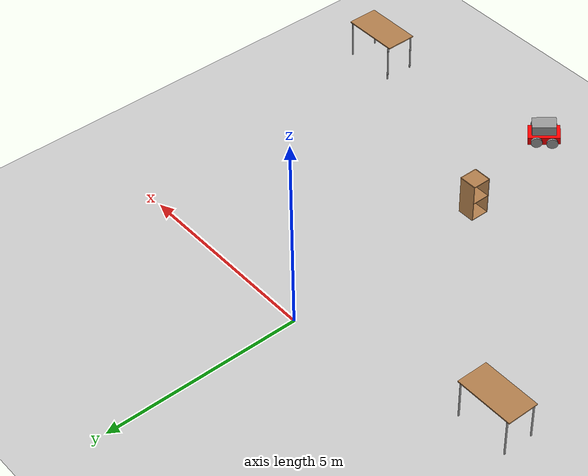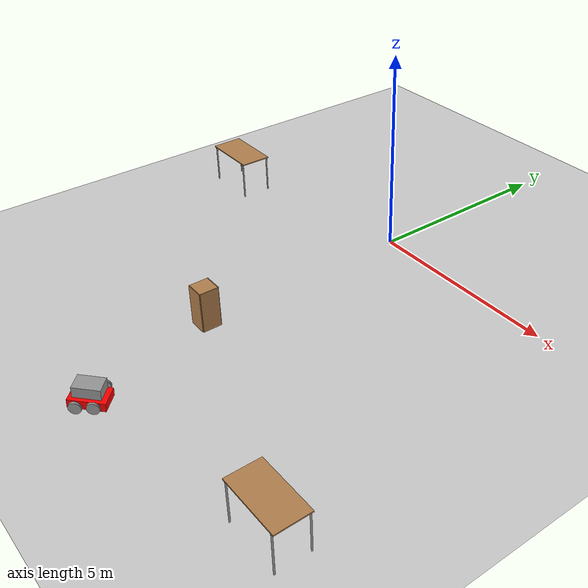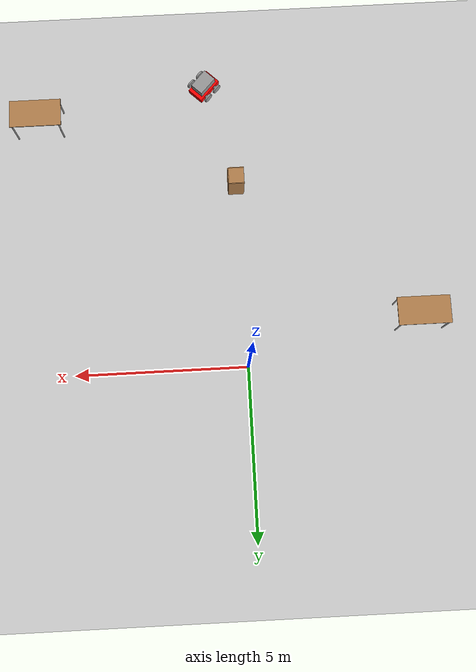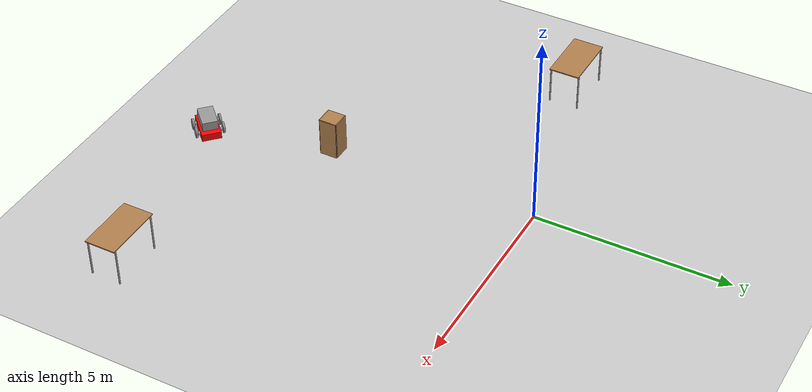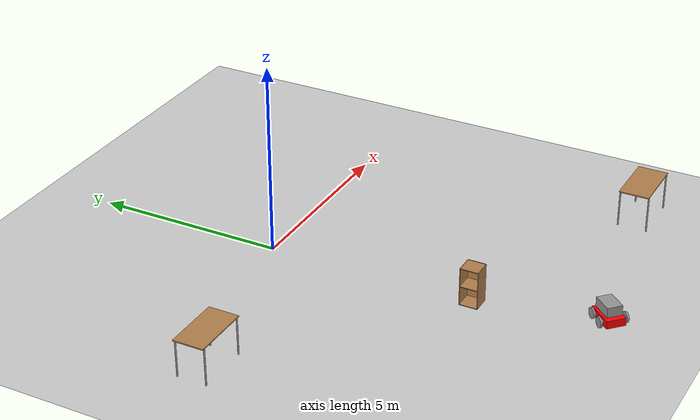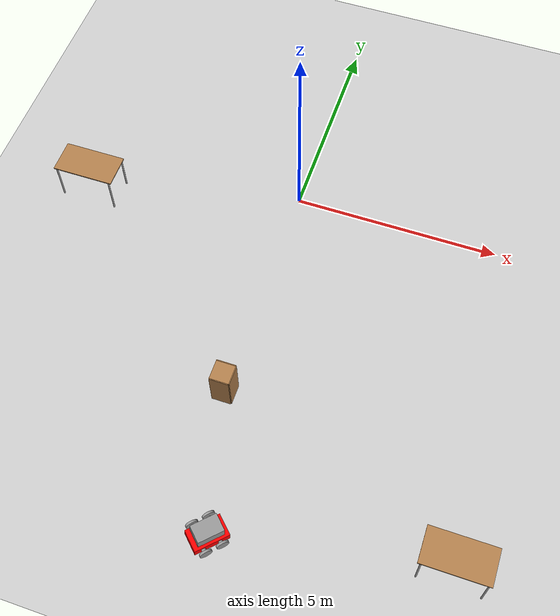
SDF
<sdf version="1.6">
 <world name="default">
  <model name="ground_plane">
   <static>1</static>
   <link name="link">
    <collision name="collision">
     <geometry><plane><normal>0 0 1</normal><size>100 100</size></plane></geometry>
     <surface><friction><ode><mu>100</mu><mu2>50</mu2></ode></friction></surface>
    </collision>
    <visual name="visual">
     <cast_shadows>0</cast_shadows>
     <geometry><plane><normal>0 0 1</normal><size>100 100</size></plane></geometry>
     <material>
      <script><uri>file://media/materials/scripts/gazebo.material</uri><name>Gazebo/Grey</name></script>
     </material>
    </visual>
   </link>
  </model>
  <model name="minikart_1">
   <link name="link_0">
    <inertial>
     <mass>1</mass>
     <inertia>
      <ixx>0.166667</ixx>
      <ixy>0</ixy>
      <ixz>0</ixz>
      <iyy>0.166667</iyy>
      <iyz>0</iyz>
      <izz>0.166667</izz>
     </inertia>
    </inertial>
    <pose>-0.020217 -0.007477 -0.044375 0 -0 0</pose>
    <visual name="visual">
     <geometry><box><size>0.8 0.5 0.2</size></box></geometry>
     <material>
      <lighting>1</lighting>
      <script><uri>file://media/materials/scripts/gazebo.material</uri><name>Gazebo/Grey</name></script>
      <shader type="pixel"><normal_map>__default__</normal_map></shader>
      <ambient>1 0 0 1</ambient>
      <diffuse>1 0 0 1</diffuse>
      <specular>0.5 0.01 0.01 1</specular>
      <emissive>0 0 0 1</emissive>
     </material>
    </visual>
    <collision name="collision">
     <geometry><box><size>0.8 0.5 0.2</size></box></geometry>
     <surface>
      <friction>
       <ode><mu>1</mu><mu2>1</mu2><fdir1>0 0 0</fdir1><slip1>0</slip1><slip2>0</slip2></ode>
       <torsional>
        <coefficient>1</coefficient>
        <patch_radius>0</patch_radius>
        <surface_radius>0</surface_radius>
        <use_patch_radius>1</use_patch_radius>
        <ode><slip>0</slip></ode>
       </torsional>
      </friction>
      <bounce><restitution_coefficient>0</restitution_coefficient><threshold>1e+06</threshold></bounce>
      <contact>
       <collide_without_contact>0</collide_without_contact>
       <collide_without_contact_bitmask>1</collide_without_contact_bitmask>
       <collide_bitmask>1</collide_bitmask>
       <ode>
        <soft_cfm>0</soft_cfm>
        <soft_erp>0.2</soft_erp>
        <kp>1e+13</kp>
        <kd>1</kd>
        <max_vel>0.01</max_vel>
        <min_depth>0</min_depth>
       </ode>
       <bullet>
        <split_impulse>1</split_impulse>
        <split_impulse_penetration_threshold>-0.01</split_impulse_penetration_threshold>
        <soft_cfm>0</soft_cfm>
        <soft_erp>0.2</soft_erp>
        <kp>1e+13</kp>
        <kd>1</kd>
       </bullet>
      </contact>
     </surface>
    </collision>
   </link>
   <link name="link_1">
    <inertial>
     <mass>1</mass>
     <inertia><ixx>0.145833</ixx><ixy>0</ixy><ixz>0</ixz><iyy>0.145833</iyy><iyz>0</iyz><izz>0.125</izz></inertia>
    </inertial>
    <pose>-0.198848 -0.00709 -0.044375 0 -0 0</pose>
    <visual name="visual">
     <pose>0 0 0 1.5708 -0 0</pose>
     <geometry><cylinder><radius>0.05</radius><length>0.7</length></cylinder></geometry>
     <material>
      <lighting>1</lighting>
      <script><uri>file://media/materials/scripts/gazebo.material</uri><name>Gazebo/Grey</name></script>
      <shader type="pixel"><normal_map>__default__</normal_map></shader>
      <ambient>0 0 0 1</ambient>
      <diffuse>0 0 0 1</diffuse>
      <specular>0 0 0 1</specular>
      <emissive>0 0 0 1</emissive>
     </material>
    </visual>
    <collision name="collision">
     <pose>0 0 0 1.5708 -0 0</pose>
     <geometry><cylinder><radius>0.05</radius><length>0.7</length></cylinder></geometry>
     <surface>
      <friction>
       <ode><mu>1</mu><mu2>1</mu2><fdir1>0 0 0</fdir1><slip1>0</slip1><slip2>0</slip2></ode>
       <torsional>
        <coefficient>1</coefficient>
        <patch_radius>0</patch_radius>
        <surface_radius>0</surface_radius>
        <use_patch_radius>1</use_patch_radius>
        <ode><slip>0</slip></ode>
       </torsional>
      </friction>
      <bounce><restitution_coefficient>0</restitution_coefficient><threshold>1e+06</threshold></bounce>
      <contact>
       <collide_without_contact>0</collide_without_contact>
       <collide_without_contact_bitmask>1</collide_without_contact_bitmask>
       <collide_bitmask>1</collide_bitmask>
       <ode>
        <soft_cfm>0</soft_cfm>
        <soft_erp>0.2</soft_erp>
        <kp>1e+13</kp>
        <kd>1</kd>
        <max_vel>0.01</max_vel>
        <min_depth>0</min_depth>
       </ode>
       <bullet>
        <split_impulse>1</split_impulse>
        <split_impulse_penetration_threshold>-0.01</split_impulse_penetration_threshold>
        <soft_cfm>0</soft_cfm>
        <soft_erp>0.2</soft_erp>
        <kp>1e+13</kp>
        <kd>1</kd>
       </bullet>
      </contact>
     </surface>
    </collision>
   </link>
   <link name="link_1_clone">
    <inertial>
     <mass>1</mass>
     <inertia><ixx>0.145833</ixx><ixy>0</ixy><ixz>0</ixz><iyy>0.145833</iyy><iyz>0</iyz><izz>0.125</izz></inertia>
    </inertial>
    <pose>0.182326 -0.007416 -0.044375 0 -0 0</pose>
    <visual name="visual">
     <pose>0 0 0 1.5708 -0 0</pose>
     <geometry><cylinder><radius>0.05</radius><length>0.7</length></cylinder></geometry>
     <material>
      <lighting>1</lighting>
      <script><uri>file://media/materials/scripts/gazebo.material</uri><name>Gazebo/Grey</name></script>
      <shader type="pixel"><normal_map>__default__</normal_map></shader>
      <ambient>0 0 0 1</ambient>
      <diffuse>0 0 0 1</diffuse>
      <specular>0 0 0 1</specular>
      <emissive>0 0 0 1</emissive>
     </material>
    </visual>
    <collision name="collision">
     <pose>0 0 0 1.5708 -0 0</pose>
     <geometry><cylinder><radius>0.05</radius><length>0.7</length></cylinder></geometry>
     <surface>
      <friction>
       <ode><mu>1</mu><mu2>1</mu2><fdir1>0 0 0</fdir1><slip1>0</slip1><slip2>0</slip2></ode>
       <torsional>
        <coefficient>1</coefficient>
        <patch_radius>0</patch_radius>
        <surface_radius>0</surface_radius>
        <use_patch_radius>1</use_patch_radius>
        <ode><slip>0</slip></ode>
       </torsional>
      </friction>
      <bounce><restitution_coefficient>0</restitution_coefficient><threshold>1e+06</threshold></bounce>
      <contact>
       <collide_without_contact>0</collide_without_contact>
       <collide_without_contact_bitmask>1</collide_without_contact_bitmask>
       <collide_bitmask>1</collide_bitmask>
       <ode>
        <soft_cfm>0</soft_cfm>
        <soft_erp>0.2</soft_erp>
        <kp>1e+13</kp>
        <kd>1</kd>
        <max_vel>0.01</max_vel>
        <min_depth>0</min_depth>
       </ode>
       <bullet>
        <split_impulse>1</split_impulse>
        <split_impulse_penetration_threshold>-0.01</split_impulse_penetration_threshold>
        <soft_cfm>0</soft_cfm>
        <soft_erp>0.2</soft_erp>
        <kp>1e+13</kp>
        <kd>1</kd>
       </bullet>
      </contact>
     </surface>
    </collision>
   </link>
   <link name="link_2">
    <inertial>
     <mass>1</mass>
     <inertia><ixx>0.145833</ixx><ixy>0</ixy><ixz>0</ixz><iyy>0.145833</iyy><iyz>0</iyz><izz>0.125</izz></inertia>
    </inertial>
    <pose>0.176149 -0.348651 -0.044375 0 -0 0</pose>
    <visual name="visual">
     <pose>0 0 0 1.5708 -0 0</pose>
     <geometry><cylinder><radius>0.14</radius><length>0.05</length></cylinder></geometry>
     <material>
      <lighting>1</lighting>
      <script><uri>file://media/materials/scripts/gazebo.material</uri><name>Gazebo/Grey</name></script>
      <shader type="pixel"><normal_map>__default__</normal_map></shader>
      <ambient>0 0 0 1</ambient>
      <diffuse>0 0 0 1</diffuse>
      <specular>0 0 0 1</specular>
      <emissive>0 0 0 1</emissive>
     </material>
    </visual>
    <collision name="collision">
     <pose>0 0 0 1.5708 -0 0</pose>
     <geometry><cylinder><radius>0.14</radius><length>0.05</length></cylinder></geometry>
     <surface>
      <friction>
       <ode><mu>1</mu><mu2>1</mu2><fdir1>0 0 0</fdir1><slip1>0</slip1><slip2>0</slip2></ode>
       <torsional>
        <coefficient>1</coefficient>
        <patch_radius>0</patch_radius>
        <surface_radius>0</surface_radius>
        <use_patch_radius>1</use_patch_radius>
        <ode><slip>0</slip></ode>
       </torsional>
      </friction>
      <bounce><restitution_coefficient>0</restitution_coefficient><threshold>1e+06</threshold></bounce>
      <contact>
       <collide_without_contact>0</collide_without_contact>
       <collide_without_contact_bitmask>1</collide_without_contact_bitmask>
       <collide_bitmask>1</collide_bitmask>
       <ode>
        <soft_cfm>0</soft_cfm>
        <soft_erp>0.2</soft_erp>
        <kp>1e+13</kp>
        <kd>1</kd>
        <max_vel>0.01</max_vel>
        <min_depth>0</min_depth>
       </ode>
       <bullet>
        <split_impulse>1</split_impulse>
        <split_impulse_penetration_threshold>-0.01</split_impulse_penetration_threshold>
        <soft_cfm>0</soft_cfm>
        <soft_erp>0.2</soft_erp>
        <kp>1e+13</kp>
        <kd>1</kd>
       </bullet>
      </contact>
     </surface>
    </collision>
   </link>
   <link name="link_2_clone">
    <inertial>
     <mass>1</mass>
     <inertia><ixx>0.145833</ixx><ixy>0</ixy><ixz>0</ixz><iyy>0.145833</iyy><iyz>0</iyz><izz>0.125</izz></inertia>
    </inertial>
    <pose>0.17409 0.334641 -0.044375 0 -0 0</pose>
    <visual name="visual">
     <pose>0 0 0 1.5708 -0 0</pose>
     <geometry><cylinder><radius>0.14</radius><length>0.05</length></cylinder></geometry>
     <material>
      <lighting>1</lighting>
      <script><uri>file://media/materials/scripts/gazebo.material</uri><name>Gazebo/Grey</name></script>
      <shader type="pixel"><normal_map>__default__</normal_map></shader>
      <ambient>0 0 0 1</ambient>
      <diffuse>0 0 0 1</diffuse>
      <specular>0 0 0 1</specular>
      <emissive>0 0 0 1</emissive>
     </material>
    </visual>
    <collision name="collision">
     <pose>0 0 0 1.5708 -0 0</pose>
     <geometry><cylinder><radius>0.14</radius><length>0.05</length></cylinder></geometry>
     <surface>
      <friction>
       <ode><mu>1</mu><mu2>1</mu2><fdir1>0 0 0</fdir1><slip1>0</slip1><slip2>0</slip2></ode>
       <torsional>
        <coefficient>1</coefficient>
        <patch_radius>0</patch_radius>
        <surface_radius>0</surface_radius>
        <use_patch_radius>1</use_patch_radius>
        <ode><slip>0</slip></ode>
       </torsional>
      </friction>
      <bounce><restitution_coefficient>0</restitution_coefficient><threshold>1e+06</threshold></bounce>
      <contact>
       <collide_without_contact>0</collide_without_contact>
       <collide_without_contact_bitmask>1</collide_without_contact_bitmask>
       <collide_bitmask>1</collide_bitmask>
       <ode>
        <soft_cfm>0</soft_cfm>
        <soft_erp>0.2</soft_erp>
        <kp>1e+13</kp>
        <kd>1</kd>
        <max_vel>0.01</max_vel>
        <min_depth>0</min_depth>
       </ode>
       <bullet>
        <split_impulse>1</split_impulse>
        <split_impulse_penetration_threshold>-0.01</split_impulse_penetration_threshold>
        <soft_cfm>0</soft_cfm>
        <soft_erp>0.2</soft_erp>
        <kp>1e+13</kp>
        <kd>1</kd>
       </bullet>
      </contact>
     </surface>
    </collision>
   </link>
   <link name="link_2_clone_0">
    <inertial>
     <mass>1</mass>
     <inertia><ixx>0.145833</ixx><ixy>0</ixy><ixz>0</ixz><iyy>0.145833</iyy><iyz>0</iyz><izz>0.125</izz></inertia>
    </inertial>
    <pose>-0.201075 0.337015 0.000625 0 -0 0</pose>
    <visual name="visual">
     <pose>0 0 0 1.5708 -0 0</pose>
     <geometry><cylinder><radius>0.14</radius><length>0.05</length></cylinder></geometry>
     <material>
      <lighting>1</lighting>
      <script><uri>file://media/materials/scripts/gazebo.material</uri><name>Gazebo/Grey</name></script>
      <shader type="pixel"><normal_map>__default__</normal_map></shader>
      <ambient>0 0 0 1</ambient>
      <diffuse>0 0 0 1</diffuse>
      <specular>0 0 0 1</specular>
      <emissive>0 0 0 1</emissive>
     </material>
    </visual>
    <collision name="collision">
     <pose>0 0 0 1.5708 -0 0</pose>
     <geometry><cylinder><radius>0.14</radius><length>0.05</length></cylinder></geometry>
     <surface>
      <friction>
       <ode><mu>1</mu><mu2>1</mu2><fdir1>0 0 0</fdir1><slip1>0</slip1><slip2>0</slip2></ode>
       <torsional>
        <coefficient>1</coefficient>
        <patch_radius>0</patch_radius>
        <surface_radius>0</surface_radius>
        <use_patch_radius>1</use_patch_radius>
        <ode><slip>0</slip></ode>
       </torsional>
      </friction>
      <bounce><restitution_coefficient>0</restitution_coefficient><threshold>1e+06</threshold></bounce>
      <contact>
       <collide_without_contact>0</collide_without_contact>
       <collide_without_contact_bitmask>1</collide_without_contact_bitmask>
       <collide_bitmask>1</collide_bitmask>
       <ode>
        <soft_cfm>0</soft_cfm>
        <soft_erp>0.2</soft_erp>
        <kp>1e+13</kp>
        <kd>1</kd>
        <max_vel>0.01</max_vel>
        <min_depth>0</min_depth>
       </ode>
       <bullet>
        <split_impulse>1</split_impulse>
        <split_impulse_penetration_threshold>-0.01</split_impulse_penetration_threshold>
        <soft_cfm>0</soft_cfm>
        <soft_erp>0.2</soft_erp>
        <kp>1e+13</kp>
        <kd>1</kd>
       </bullet>
      </contact>
     </surface>
    </collision>
   </link>
   <link name="link_2_clone_1">
    <inertial>
     <mass>1</mass>
     <inertia><ixx>0.145833</ixx><ixy>0</ixy><ixz>0</ixz><iyy>0.145833</iyy><iyz>0</iyz><izz>0.125</izz></inertia>
    </inertial>
    <pose>-0.20738 -0.355325 0.000625 0 -0 0</pose>
    <visual name="visual">
     <pose>0 0 0 1.5708 -0 0</pose>
     <geometry><cylinder><radius>0.14</radius><length>0.05</length></cylinder></geometry>
     <material>
      <lighting>1</lighting>
      <script><uri>file://media/materials/scripts/gazebo.material</uri><name>Gazebo/Grey</name></script>
      <shader type="pixel"><normal_map>__default__</normal_map></shader>
      <ambient>0 0 0 1</ambient>
      <diffuse>0 0 0 1</diffuse>
      <specular>0 0 0 1</specular>
      <emissive>0 0 0 1</emissive>
     </material>
    </visual>
    <collision name="collision">
     <pose>0 0 0 1.5708 -0 0</pose>
     <geometry><cylinder><radius>0.14</radius><length>0.05</length></cylinder></geometry>
     <surface>
      <friction>
       <ode><mu>1</mu><mu2>1</mu2><fdir1>0 0 0</fdir1><slip1>0</slip1><slip2>0</slip2></ode>
       <torsional>
        <coefficient>1</coefficient>
        <patch_radius>0</patch_radius>
        <surface_radius>0</surface_radius>
        <use_patch_radius>1</use_patch_radius>
        <ode><slip>0</slip></ode>
       </torsional>
      </friction>
      <bounce><restitution_coefficient>0</restitution_coefficient><threshold>1e+06</threshold></bounce>
      <contact>
       <collide_without_contact>0</collide_without_contact>
       <collide_without_contact_bitmask>1</collide_without_contact_bitmask>
       <collide_bitmask>1</collide_bitmask>
       <ode>
        <soft_cfm>0</soft_cfm>
        <soft_erp>0.2</soft_erp>
        <kp>1e+13</kp>
        <kd>1</kd>
        <max_vel>0.01</max_vel>
        <min_depth>0</min_depth>
       </ode>
       <bullet>
        <split_impulse>1</split_impulse>
        <split_impulse_penetration_threshold>-0.01</split_impulse_penetration_threshold>
        <soft_cfm>0</soft_cfm>
        <soft_erp>0.2</soft_erp>
        <kp>1e+13</kp>
        <kd>1</kd>
       </bullet>
      </contact>
     </surface>
    </collision>
   </link>
   <link name="link_3">
    <inertial>
     <mass>1</mass>
     <inertia>
      <ixx>0.166667</ixx>
      <ixy>0</ixy>
      <ixz>0</ixz>
      <iyy>0.166667</iyy>
      <iyz>0</iyz>
      <izz>0.166667</izz>
     </inertia>
    </inertial>
    <pose>-0.020217 -0.007477 0.220625 0 -0 0</pose>
    <visual name="visual">
     <geometry><box><size>0.6 0.4 0.25</size></box></geometry>
     <material>
      <lighting>1</lighting>
      <script><uri>file://media/materials/scripts/gazebo.material</uri><name>Gazebo/Grey</name></script>
      <shader type="pixel"><normal_map>__default__</normal_map></shader>
      <ambient>1 1 1 1</ambient>
      <diffuse>1 1 1 1</diffuse>
      <specular>0.01 0.01 0.01 1</specular>
      <emissive>0 0 0 1</emissive>
     </material>
    </visual>
    <collision name="collision">
     <geometry><box><size>0.6 0.4 0.25</size></box></geometry>
     <surface>
      <friction>
       <ode><mu>1</mu><mu2>1</mu2><fdir1>0 0 0</fdir1><slip1>0</slip1><slip2>0</slip2></ode>
       <torsional>
        <coefficient>1</coefficient>
        <patch_radius>0</patch_radius>
        <surface_radius>0</surface_radius>
        <use_patch_radius>1</use_patch_radius>
        <ode><slip>0</slip></ode>
       </torsional>
      </friction>
      <bounce><restitution_coefficient>0</restitution_coefficient><threshold>1e+06</threshold></bounce>
      <contact>
       <collide_without_contact>0</collide_without_contact>
       <collide_without_contact_bitmask>1</collide_without_contact_bitmask>
       <collide_bitmask>1</collide_bitmask>
       <ode>
        <soft_cfm>0</soft_cfm>
        <soft_erp>0.2</soft_erp>
        <kp>1e+13</kp>
        <kd>1</kd>
        <max_vel>0.01</max_vel>
        <min_depth>0</min_depth>
       </ode>
       <bullet>
        <split_impulse>1</split_impulse>
        <split_impulse_penetration_threshold>-0.01</split_impulse_penetration_threshold>
        <soft_cfm>0</soft_cfm>
        <soft_erp>0.2</soft_erp>
        <kp>1e+13</kp>
        <kd>1</kd>
       </bullet>
      </contact>
     </surface>
    </collision>
   </link>
   <joint name="link_0_JOINT_5" type="revolute">
    <parent>link_0</parent>
    <child>link_3</child>
    <axis>
     <xyz>0 0 1</xyz>
     <use_parent_model_frame>0</use_parent_model_frame>
     <limit>
      <lower>-1.79769e+308</lower>
      <upper>1.79769e+308</upper>
      <effort>-1</effort>
      <velocity>-1</velocity>
     </limit>
     <dynamics>
      <spring_reference>0</spring_reference>
      <spring_stiffness>0</spring_stiffness>
      <damping>0</damping>
      <friction>0</friction>
     </dynamics>
    </axis>
    <physics>
     <ode><limit><cfm>0</cfm><erp>0.2</erp></limit><suspension><cfm>0</cfm><erp>0.2</erp></suspension></ode>
    </physics>
   </joint>
   <joint name="link_0_JOINT_7" type="fixed">
    <parent>link_0</parent>
    <child>link_1</child>
    <physics>
     <ode><limit><cfm>0</cfm><erp>0.2</erp></limit><suspension><cfm>0</cfm><erp>0.2</erp></suspension></ode>
    </physics>
   </joint>
   <joint name="link_0_JOINT_8" type="fixed">
    <parent>link_0</parent>
    <child>link_1_clone</child>
    <physics>
     <ode><limit><cfm>0</cfm><erp>0.2</erp></limit><suspension><cfm>0</cfm><erp>0.2</erp></suspension></ode>
    </physics>
   </joint>
   <joint name="link_1_JOINT_2" type="revolute">
    <parent>link_1</parent>
    <child>link_2_clone_0</child>
    <axis>
     <xyz>0 0 1</xyz>
     <use_parent_model_frame>0</use_parent_model_frame>
     <limit>
      <lower>-1.79769e+308</lower>
      <upper>1.79769e+308</upper>
      <effort>-1</effort>
      <velocity>-1</velocity>
     </limit>
     <dynamics>
      <spring_reference>0</spring_reference>
      <spring_stiffness>0</spring_stiffness>
      <damping>0</damping>
      <friction>0</friction>
     </dynamics>
    </axis>
    <physics>
     <ode><limit><cfm>0</cfm><erp>0.2</erp></limit><suspension><cfm>0</cfm><erp>0.2</erp></suspension></ode>
    </physics>
   </joint>
   <joint name="link_1_JOINT_3" type="revolute">
    <parent>link_1</parent>
    <child>link_2_clone_1</child>
    <axis>
     <xyz>0 0 1</xyz>
     <use_parent_model_frame>0</use_parent_model_frame>
     <limit>
      <lower>-1.79769e+308</lower>
      <upper>1.79769e+308</upper>
      <effort>-1</effort>
      <velocity>-1</velocity>
     </limit>
     <dynamics>
      <spring_reference>0</spring_reference>
      <spring_stiffness>0</spring_stiffness>
      <damping>0</damping>
      <friction>0</friction>
     </dynamics>
    </axis>
    <physics>
     <ode><limit><cfm>0</cfm><erp>0.2</erp></limit><suspension><cfm>0</cfm><erp>0.2</erp></suspension></ode>
    </physics>
   </joint>
   <joint name="link_1_clone_JOINT_0" type="revolute">
    <parent>link_1_clone</parent>
    <child>link_2</child>
    <axis>
     <xyz>0 0 1</xyz>
     <use_parent_model_frame>0</use_parent_model_frame>
     <limit>
      <lower>-1.79769e+308</lower>
      <upper>1.79769e+308</upper>
      <effort>-1</effort>
      <velocity>-1</velocity>
     </limit>
     <dynamics>
      <spring_reference>0</spring_reference>
      <spring_stiffness>0</spring_stiffness>
      <damping>0</damping>
      <friction>0</friction>
     </dynamics>
    </axis>
    <physics>
     <ode><limit><cfm>0</cfm><erp>0.2</erp></limit><suspension><cfm>0</cfm><erp>0.2</erp></suspension></ode>
    </physics>
   </joint>
   <joint name="link_1_clone_JOINT_1" type="revolute">
    <parent>link_1_clone</parent>
    <child>link_2_clone</child>
    <axis>
     <xyz>0 0 1</xyz>
     <use_parent_model_frame>0</use_parent_model_frame>
     <limit>
      <lower>-1.79769e+308</lower>
      <upper>1.79769e+308</upper>
      <effort>-1</effort>
      <velocity>-1</velocity>
     </limit>
     <dynamics>
      <spring_reference>0</spring_reference>
      <spring_stiffness>0</spring_stiffness>
      <damping>0</damping>
      <friction>0</friction>
     </dynamics>
    </axis>
    <physics>
     <ode><limit><cfm>0</cfm><erp>0.2</erp></limit><suspension><cfm>0</cfm><erp>0.2</erp></suspension></ode>
    </physics>
   </joint>
   <joint name="link_1_clone_JOINT_4" type="revolute">
    <parent>link_1_clone</parent>
    <child>link_2</child>
    <axis>
     <xyz>1 0 0</xyz>
     <use_parent_model_frame>0</use_parent_model_frame>
     <limit>
      <lower>-1.79769e+308</lower>
      <upper>1.79769e+308</upper>
      <effort>-1</effort>
      <velocity>-1</velocity>
     </limit>
     <dynamics>
      <spring_reference>0</spring_reference>
      <spring_stiffness>0</spring_stiffness>
      <damping>0</damping>
      <friction>0</friction>
     </dynamics>
    </axis>
    <physics>
     <ode><limit><cfm>0</cfm><erp>0.2</erp></limit><suspension><cfm>0</cfm><erp>0.2</erp></suspension></ode>
    </physics>
   </joint>
   <static>0</static>
   <pose>0.868539 -8.6377 0.172983 0.001759 -0.067848 -2.33748</pose>
  </model>
  <model name="table_1">
   <static>1</static>
   <link name="link">
    <collision name="surface">
     <pose>0 0 1 0 -0 0</pose>
     <geometry><box><size>1.5 0.8 0.03</size></box></geometry>
     <surface><friction><ode><mu>0.6</mu><mu2>0.6</mu2></ode></friction></surface>
    </collision>
    <visual name="visual1">
     <pose>0 0 1 0 -0 0</pose>
     <geometry><box><size>1.5 0.8 0.03</size></box></geometry>
     <material>
      <script><uri>file://media/materials/scripts/gazebo.material</uri><name>Gazebo/Wood</name></script>
     </material>
    </visual>
    <collision name="front_left_leg">
     <pose>0.68 0.38 0.5 0 -0 0</pose>
     <geometry><cylinder><radius>0.02</radius><length>1</length></cylinder></geometry>
    </collision>
    <visual name="front_left_leg">
     <pose>0.68 0.38 0.5 0 -0 0</pose>
     <geometry><cylinder><radius>0.02</radius><length>1</length></cylinder></geometry>
     <material>
      <script><uri>file://media/materials/scripts/gazebo.material</uri><name>Gazebo/Grey</name></script>
     </material>
    </visual>
    <collision name="front_right_leg">
     <pose>0.68 -0.38 0.5 0 -0 0</pose>
     <geometry><cylinder><radius>0.02</radius><length>1</length></cylinder></geometry>
    </collision>
    <visual name="front_right_leg">
     <pose>0.68 -0.38 0.5 0 -0 0</pose>
     <geometry><cylinder><radius>0.02</radius><length>1</length></cylinder></geometry>
     <material>
      <script><uri>file://media/materials/scripts/gazebo.material</uri><name>Gazebo/Grey</name></script>
     </material>
    </visual>
    <collision name="back_right_leg">
     <pose>-0.68 -0.38 0.5 0 -0 0</pose>
     <geometry><cylinder><radius>0.02</radius><length>1</length></cylinder></geometry>
    </collision>
    <visual name="back_right_leg">
     <pose>-0.68 -0.38 0.5 0 -0 0</pose>
     <geometry><cylinder><radius>0.02</radius><length>1</length></cylinder></geometry>
     <material>
      <script><uri>file://media/materials/scripts/gazebo.material</uri><name>Gazebo/Grey</name></script>
     </material>
    </visual>
    <collision name="back_left_leg">
     <pose>-0.68 0.38 0.5 0 -0 0</pose>
     <geometry><cylinder><radius>0.02</radius><length>1</length></cylinder></geometry>
    </collision>
    <visual name="back_left_leg">
     <pose>-0.68 0.38 0.5 0 -0 0</pose>
     <geometry><cylinder><radius>0.02</radius><length>1</length></cylinder></geometry>
     <material>
      <script><uri>file://media/materials/scripts/gazebo.material</uri><name>Gazebo/Grey</name></script>
     </material>
    </visual>
   </link>
   <pose>5.8405 -7.66393 0 0 -0 0</pose>
  </model>
  <model name="table_3">
   <static>1</static>
   <link name="link">
    <collision name="surface">
     <pose>0 0 1 0 -0 0</pose>
     <geometry><box><size>1.5 0.8 0.03</size></box></geometry>
     <surface><friction><ode><mu>0.6</mu><mu2>0.6</mu2></ode></friction></surface>
    </collision>
    <visual name="visual1">
     <pose>0 0 1 0 -0 0</pose>
     <geometry><box><size>1.5 0.8 0.03</size></box></geometry>
     <material>
      <script><uri>file://media/materials/scripts/gazebo.material</uri><name>Gazebo/Wood</name></script>
     </material>
    </visual>
    <collision name="front_left_leg">
     <pose>0.68 0.38 0.5 0 -0 0</pose>
     <geometry><cylinder><radius>0.02</radius><length>1</length></cylinder></geometry>
    </collision>
    <visual name="front_left_leg">
     <pose>0.68 0.38 0.5 0 -0 0</pose>
     <geometry><cylinder><radius>0.02</radius><length>1</length></cylinder></geometry>
     <material>
      <script><uri>file://media/materials/scripts/gazebo.material</uri><name>Gazebo/Grey</name></script>
     </material>
    </visual>
    <collision name="front_right_leg">
     <pose>0.68 -0.38 0.5 0 -0 0</pose>
     <geometry><cylinder><radius>0.02</radius><length>1</length></cylinder></geometry>
    </collision>
    <visual name="front_right_leg">
     <pose>0.68 -0.38 0.5 0 -0 0</pose>
     <geometry><cylinder><radius>0.02</radius><length>1</length></cylinder></geometry>
     <material>
      <script><uri>file://media/materials/scripts/gazebo.material</uri><name>Gazebo/Grey</name></script>
     </material>
    </visual>
    <collision name="back_right_leg">
     <pose>-0.68 -0.38 0.5 0 -0 0</pose>
     <geometry><cylinder><radius>0.02</radius><length>1</length></cylinder></geometry>
    </collision>
    <visual name="back_right_leg">
     <pose>-0.68 -0.38 0.5 0 -0 0</pose>
     <geometry><cylinder><radius>0.02</radius><length>1</length></cylinder></geometry>
     <material>
      <script><uri>file://media/materials/scripts/gazebo.material</uri><name>Gazebo/Grey</name></script>
     </material>
    </visual>
    <collision name="back_left_leg">
     <pose>-0.68 0.38 0.5 0 -0 0</pose>
     <geometry><cylinder><radius>0.02</radius><length>1</length></cylinder></geometry>
    </collision>
    <visual name="back_left_leg">
     <pose>-0.68 0.38 0.5 0 -0 0</pose>
     <geometry><cylinder><radius>0.02</radius><length>1</length></cylinder></geometry>
     <material>
      <script><uri>file://media/materials/scripts/gazebo.material</uri><name>Gazebo/Grey</name></script>
     </material>
    </visual>
   </link>
   <pose>-5.00417 -1.25289 0 0 -0 0</pose>
  </model>
  <model name="cabinet_0">
   <static>1</static>
   <link name="cabinet_bottom_plate">
    <inertial>
     <pose>0 0 -1 0 -0 0</pose>
     <inertia><ixx>2.05</ixx><ixy>0</ixy><ixz>0</ixz><iyy>2.05</iyy><iyz>0</iyz><izz>2.05</izz></inertia>
     <mass>25</mass>
    </inertial>
    <collision name="cabinet_bottom_plate_geom">
     <pose>0 0 0.01 0 -0 0</pose>
     <geometry><box><size>0.45 0.45 0.02</size></box></geometry>
    </collision>
    <visual name="cabinet_bottom_plate_geom_visual">
     <pose>0 0 0.01 0 -0 0</pose>
     <geometry><box><size>0.45 0.45 0.02</size></box></geometry>
     <material>
      <script><uri>file://media/materials/scripts/gazebo.material</uri><name>Gazebo/Wood</name></script>
     </material>
    </visual>
    <collision name="cabinet_bottom_plate_geom_cabinet_back_plate">
     <pose>0.235 0 0.51 0 -0 0</pose>
     <geometry><box><size>0.02 0.45 1.02</size></box></geometry>
    </collision>
    <visual name="cabinet_bottom_plate_geom_cabinet_back_plate_visual">
     <pose>0.235 0 0.51 0 -0 0</pose>
     <geometry><box><size>0.02 0.45 1.02</size></box></geometry>
     <material>
      <script><uri>file://media/materials/scripts/gazebo.material</uri><name>Gazebo/Wood</name></script>
     </material>
    </visual>
    <collision name="cabinet_bottom_plate_geom_cabinet_left_plate">
     <pose>0 0.235 0.51 0 -0 0</pose>
     <geometry><box><size>0.45 0.02 1.02</size></box></geometry>
    </collision>
    <visual name="cabinet_bottom_plate_geom_cabinet_left_plate_visual">
     <pose>0 0.235 0.51 0 -0 0</pose>
     <geometry><box><size>0.45 0.02 1.02</size></box></geometry>
     <material>
      <script><uri>file://media/materials/scripts/gazebo.material</uri><name>Gazebo/Wood</name></script>
     </material>
    </visual>
    <collision name="cabinet_bottom_plate_geom_cabinet_middle_plate">
     <pose>0 0 0.51 0 -0 0</pose>
     <geometry><box><size>0.45 0.45 0.02</size></box></geometry>
    </collision>
    <visual name="cabinet_bottom_plate_geom_cabinet_middle_plate_visual">
     <pose>0 0 0.51 0 -0 0</pose>
     <geometry><box><size>0.45 0.45 0.02</size></box></geometry>
     <material>
      <script><uri>file://media/materials/scripts/gazebo.material</uri><name>Gazebo/Wood</name></script>
     </material>
    </visual>
    <collision name="cabinet_bottom_plate_geom_cabinet_right_plate">
     <pose>0 -0.235 0.51 0 -0 0</pose>
     <geometry><box><size>0.45 0.02 1.02</size></box></geometry>
    </collision>
    <visual name="cabinet_bottom_plate_geom_cabinet_right_plate_visual">
     <pose>0 -0.235 0.51 0 -0 0</pose>
     <geometry><box><size>0.45 0.02 1.02</size></box></geometry>
     <material>
      <script><uri>file://media/materials/scripts/gazebo.material</uri><name>Gazebo/Wood</name></script>
     </material>
    </visual>
    <collision name="cabinet_bottom_plate_geom_cabinet_top_plate">
     <pose>0 0 1.01 0 -0 0</pose>
     <geometry><box><size>0.45 0.45 0.02</size></box></geometry>
    </collision>
    <visual name="cabinet_bottom_plate_geom_cabinet_top_plate_visual">
     <pose>0 0 1.01 0 -0 0</pose>
     <geometry><box><size>0.45 0.45 0.02</size></box></geometry>
     <material>
      <script><uri>file://media/materials/scripts/gazebo.material</uri><name>Gazebo/Wood</name></script>
     </material>
    </visual>
   </link>
   <pose>0.068514 -5.4628 0 0 -0 0</pose>
  </model>
 </world>
</sdf>
